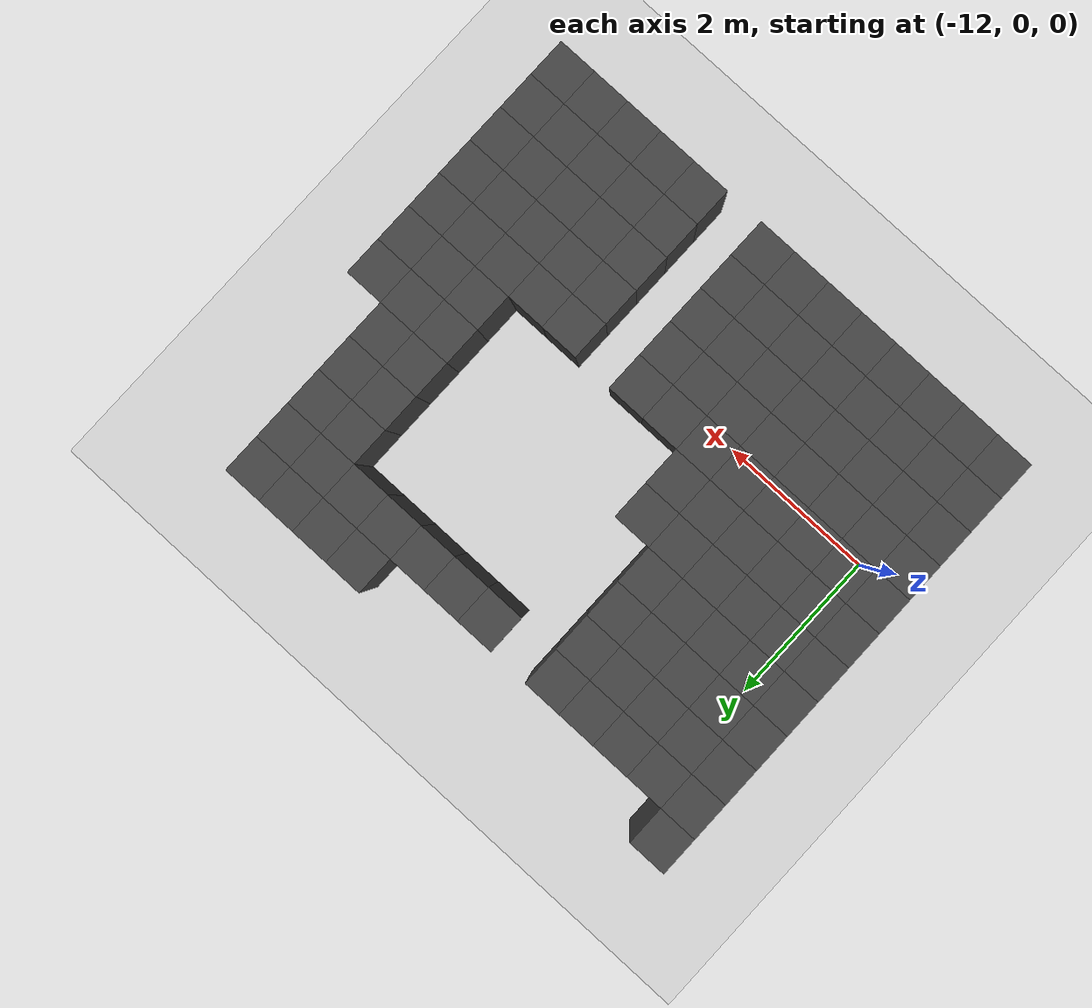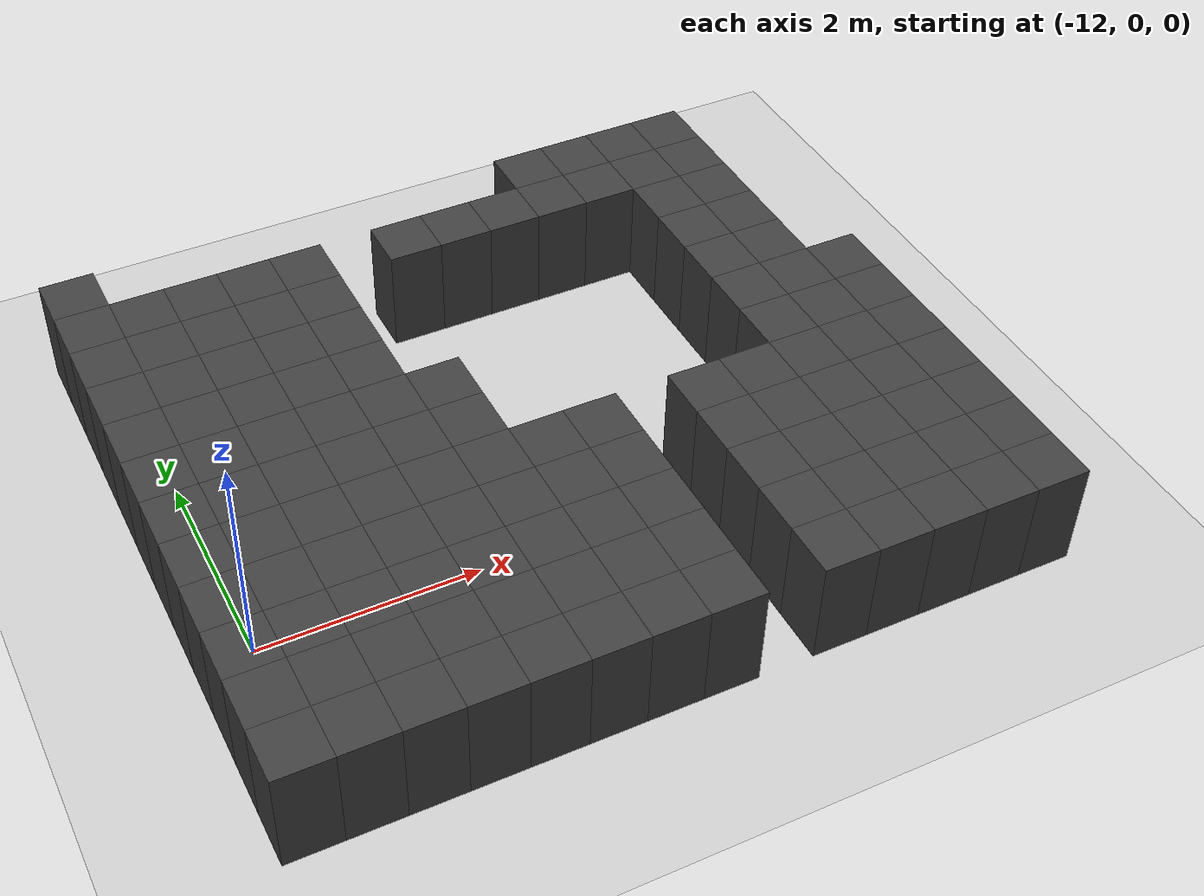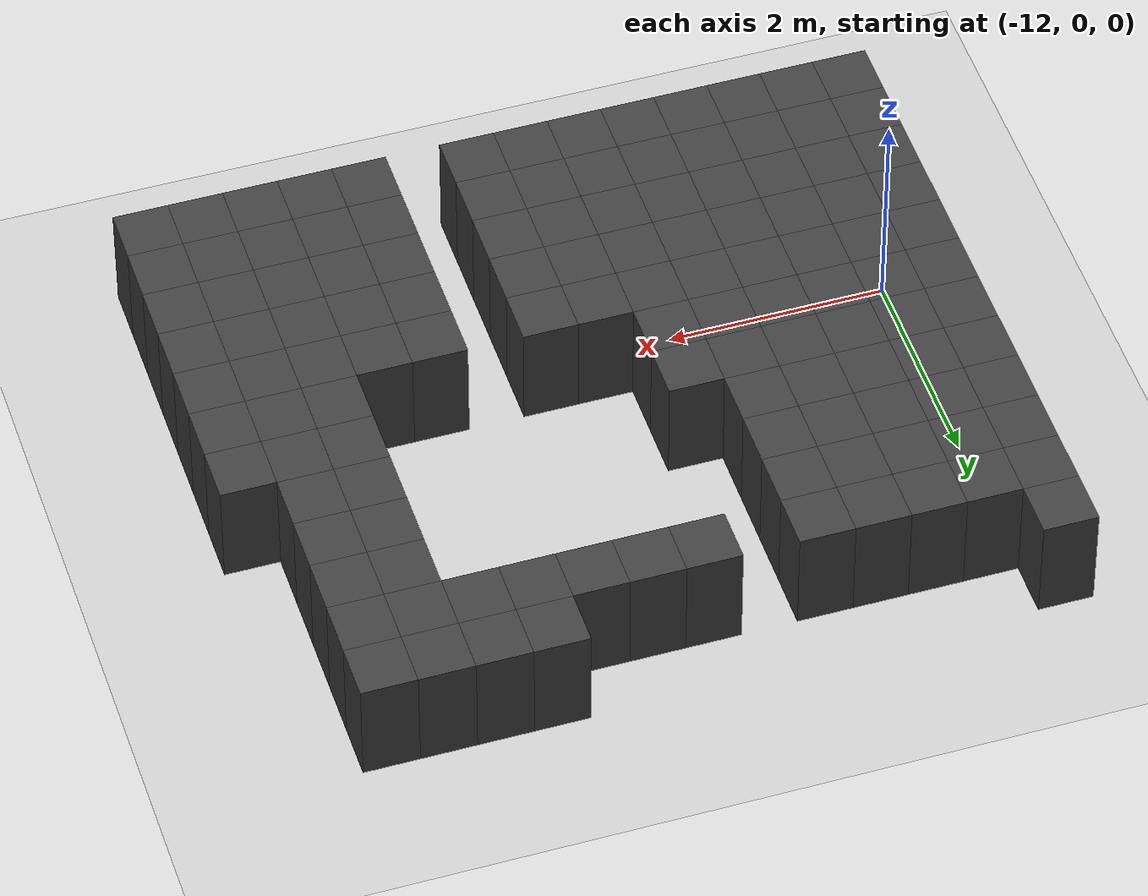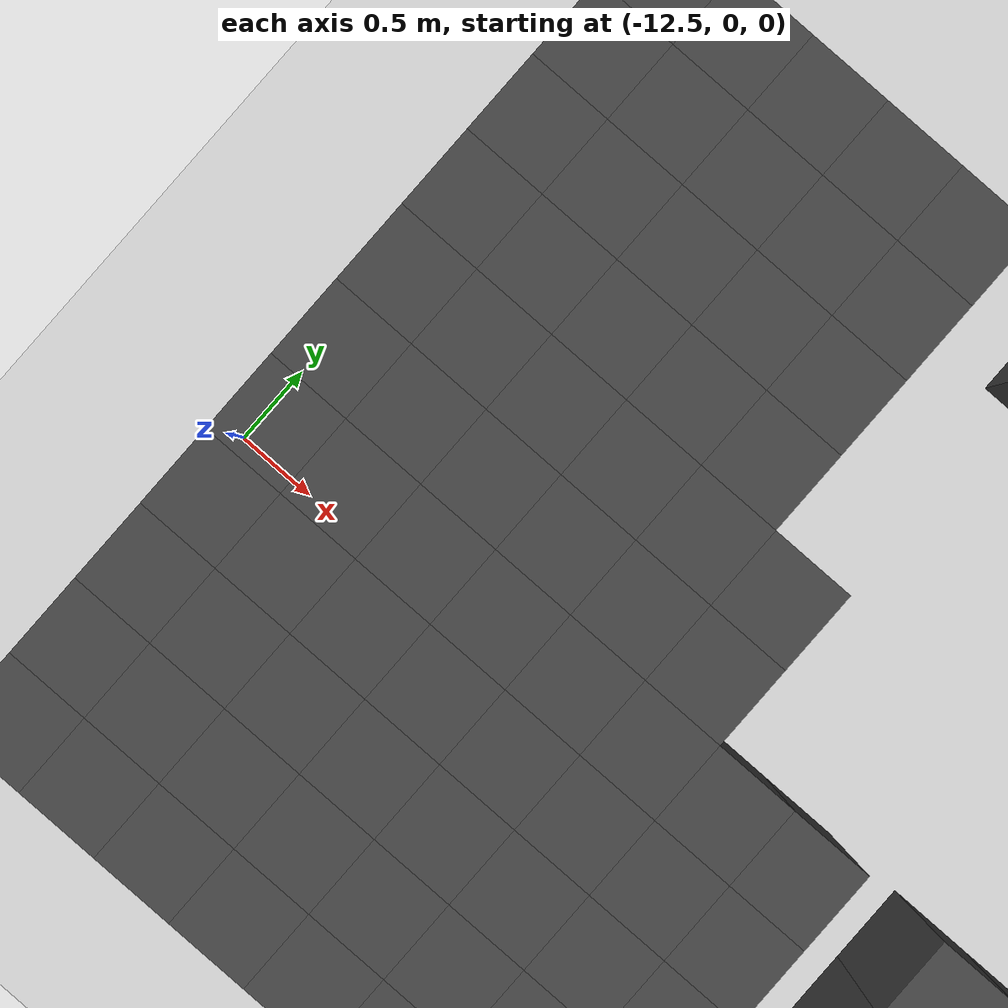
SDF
<sdf version="1.7">
 <world name="map_14547">
  <model name="ground_plane">
   <static>true</static>
   <link name="link">
    <collision name="collision">
     <geometry><plane><normal>0 0 1</normal><size>200 200</size></plane></geometry>
    </collision>
    <visual name="visual">
     <geometry><plane><normal>0 0 1</normal><size>200 200</size></plane></geometry>
     <material><ambient>0.8 0.8 0.8 1</ambient><diffuse>0.8 0.8 0.8 1</diffuse></material>
    </visual>
   </link>
  </model>
  <model name="maze_environment">
   <static>true</static>
   <link name="wall_530">
    <pose>-12.250 3.750 0.500 0 0 0</pose>
    <collision name="col"><geometry><box><size>0.5 0.5 1.0</size></box></geometry></collision>
    <visual name="vis">
     <geometry><box><size>0.5 0.5 1.0</size></box></geometry>
     <material><ambient>0.15 0.15 0.15 1</ambient><diffuse>0.25 0.25 0.25 1</diffuse></material>
    </visual>
   </link>
   <link name="wall_531">
    <pose>-7.750 3.750 0.500 0 0 0</pose>
    <collision name="col"><geometry><box><size>0.5 0.5 1.0</size></box></geometry></collision>
    <visual name="vis">
     <geometry><box><size>0.5 0.5 1.0</size></box></geometry>
     <material><ambient>0.15 0.15 0.15 1</ambient><diffuse>0.25 0.25 0.25 1</diffuse></material>
    </visual>
   </link>
   <link name="wall_532">
    <pose>-7.250 3.750 0.500 0 0 0</pose>
    <collision name="col"><geometry><box><size>0.5 0.5 1.0</size></box></geometry></collision>
    <visual name="vis">
     <geometry><box><size>0.5 0.5 1.0</size></box></geometry>
     <material><ambient>0.15 0.15 0.15 1</ambient><diffuse>0.25 0.25 0.25 1</diffuse></material>
    </visual>
   </link>
   <link name="wall_533">
    <pose>-6.750 3.750 0.500 0 0 0</pose>
    <collision name="col"><geometry><box><size>0.5 0.5 1.0</size></box></geometry></collision>
    <visual name="vis">
     <geometry><box><size>0.5 0.5 1.0</size></box></geometry>
     <material><ambient>0.15 0.15 0.15 1</ambient><diffuse>0.25 0.25 0.25 1</diffuse></material>
    </visual>
   </link>
   <link name="wall_534">
    <pose>-6.250 3.750 0.500 0 0 0</pose>
    <collision name="col"><geometry><box><size>0.5 0.5 1.0</size></box></geometry></collision>
    <visual name="vis">
     <geometry><box><size>0.5 0.5 1.0</size></box></geometry>
     <material><ambient>0.15 0.15 0.15 1</ambient><diffuse>0.25 0.25 0.25 1</diffuse></material>
    </visual>
   </link>
   <link name="wall_572">
    <pose>-12.250 3.250 0.500 0 0 0</pose>
    <collision name="col"><geometry><box><size>0.5 0.5 1.0</size></box></geometry></collision>
    <visual name="vis">
     <geometry><box><size>0.5 0.5 1.0</size></box></geometry>
     <material><ambient>0.15 0.15 0.15 1</ambient><diffuse>0.25 0.25 0.25 1</diffuse></material>
    </visual>
   </link>
   <link name="wall_573">
    <pose>-11.750 3.250 0.500 0 0 0</pose>
    <collision name="col"><geometry><box><size>0.5 0.5 1.0</size></box></geometry></collision>
    <visual name="vis">
     <geometry><box><size>0.5 0.5 1.0</size></box></geometry>
     <material><ambient>0.15 0.15 0.15 1</ambient><diffuse>0.25 0.25 0.25 1</diffuse></material>
    </visual>
   </link>
   <link name="wall_574">
    <pose>-11.250 3.250 0.500 0 0 0</pose>
    <collision name="col"><geometry><box><size>0.5 0.5 1.0</size></box></geometry></collision>
    <visual name="vis">
     <geometry><box><size>0.5 0.5 1.0</size></box></geometry>
     <material><ambient>0.15 0.15 0.15 1</ambient><diffuse>0.25 0.25 0.25 1</diffuse></material>
    </visual>
   </link>
   <link name="wall_575">
    <pose>-10.750 3.250 0.500 0 0 0</pose>
    <collision name="col"><geometry><box><size>0.5 0.5 1.0</size></box></geometry></collision>
    <visual name="vis">
     <geometry><box><size>0.5 0.5 1.0</size></box></geometry>
     <material><ambient>0.15 0.15 0.15 1</ambient><diffuse>0.25 0.25 0.25 1</diffuse></material>
    </visual>
   </link>
   <link name="wall_576">
    <pose>-10.250 3.250 0.500 0 0 0</pose>
    <collision name="col"><geometry><box><size>0.5 0.5 1.0</size></box></geometry></collision>
    <visual name="vis">
     <geometry><box><size>0.5 0.5 1.0</size></box></geometry>
     <material><ambient>0.15 0.15 0.15 1</ambient><diffuse>0.25 0.25 0.25 1</diffuse></material>
    </visual>
   </link>
   <link name="wall_577">
    <pose>-9.250 3.250 0.500 0 0 0</pose>
    <collision name="col"><geometry><box><size>0.5 0.5 1.0</size></box></geometry></collision>
    <visual name="vis">
     <geometry><box><size>0.5 0.5 1.0</size></box></geometry>
     <material><ambient>0.15 0.15 0.15 1</ambient><diffuse>0.25 0.25 0.25 1</diffuse></material>
    </visual>
   </link>
   <link name="wall_578">
    <pose>-8.750 3.250 0.500 0 0 0</pose>
    <collision name="col"><geometry><box><size>0.5 0.5 1.0</size></box></geometry></collision>
    <visual name="vis">
     <geometry><box><size>0.5 0.5 1.0</size></box></geometry>
     <material><ambient>0.15 0.15 0.15 1</ambient><diffuse>0.25 0.25 0.25 1</diffuse></material>
    </visual>
   </link>
   <link name="wall_579">
    <pose>-8.250 3.250 0.500 0 0 0</pose>
    <collision name="col"><geometry><box><size>0.5 0.5 1.0</size></box></geometry></collision>
    <visual name="vis">
     <geometry><box><size>0.5 0.5 1.0</size></box></geometry>
     <material><ambient>0.15 0.15 0.15 1</ambient><diffuse>0.25 0.25 0.25 1</diffuse></material>
    </visual>
   </link>
   <link name="wall_580">
    <pose>-7.750 3.250 0.500 0 0 0</pose>
    <collision name="col"><geometry><box><size>0.5 0.5 1.0</size></box></geometry></collision>
    <visual name="vis">
     <geometry><box><size>0.5 0.5 1.0</size></box></geometry>
     <material><ambient>0.15 0.15 0.15 1</ambient><diffuse>0.25 0.25 0.25 1</diffuse></material>
    </visual>
   </link>
   <link name="wall_581">
    <pose>-7.250 3.250 0.500 0 0 0</pose>
    <collision name="col"><geometry><box><size>0.5 0.5 1.0</size></box></geometry></collision>
    <visual name="vis">
     <geometry><box><size>0.5 0.5 1.0</size></box></geometry>
     <material><ambient>0.15 0.15 0.15 1</ambient><diffuse>0.25 0.25 0.25 1</diffuse></material>
    </visual>
   </link>
   <link name="wall_582">
    <pose>-6.750 3.250 0.500 0 0 0</pose>
    <collision name="col"><geometry><box><size>0.5 0.5 1.0</size></box></geometry></collision>
    <visual name="vis">
     <geometry><box><size>0.5 0.5 1.0</size></box></geometry>
     <material><ambient>0.15 0.15 0.15 1</ambient><diffuse>0.25 0.25 0.25 1</diffuse></material>
    </visual>
   </link>
   <link name="wall_583">
    <pose>-6.250 3.250 0.500 0 0 0</pose>
    <collision name="col"><geometry><box><size>0.5 0.5 1.0</size></box></geometry></collision>
    <visual name="vis">
     <geometry><box><size>0.5 0.5 1.0</size></box></geometry>
     <material><ambient>0.15 0.15 0.15 1</ambient><diffuse>0.25 0.25 0.25 1</diffuse></material>
    </visual>
   </link>
   <link name="wall_621">
    <pose>-12.250 2.750 0.500 0 0 0</pose>
    <collision name="col"><geometry><box><size>0.5 0.5 1.0</size></box></geometry></collision>
    <visual name="vis">
     <geometry><box><size>0.5 0.5 1.0</size></box></geometry>
     <material><ambient>0.15 0.15 0.15 1</ambient><diffuse>0.25 0.25 0.25 1</diffuse></material>
    </visual>
   </link>
   <link name="wall_622">
    <pose>-11.750 2.750 0.500 0 0 0</pose>
    <collision name="col"><geometry><box><size>0.5 0.5 1.0</size></box></geometry></collision>
    <visual name="vis">
     <geometry><box><size>0.5 0.5 1.0</size></box></geometry>
     <material><ambient>0.15 0.15 0.15 1</ambient><diffuse>0.25 0.25 0.25 1</diffuse></material>
    </visual>
   </link>
   <link name="wall_623">
    <pose>-11.250 2.750 0.500 0 0 0</pose>
    <collision name="col"><geometry><box><size>0.5 0.5 1.0</size></box></geometry></collision>
    <visual name="vis">
     <geometry><box><size>0.5 0.5 1.0</size></box></geometry>
     <material><ambient>0.15 0.15 0.15 1</ambient><diffuse>0.25 0.25 0.25 1</diffuse></material>
    </visual>
   </link>
   <link name="wall_624">
    <pose>-10.750 2.750 0.500 0 0 0</pose>
    <collision name="col"><geometry><box><size>0.5 0.5 1.0</size></box></geometry></collision>
    <visual name="vis">
     <geometry><box><size>0.5 0.5 1.0</size></box></geometry>
     <material><ambient>0.15 0.15 0.15 1</ambient><diffuse>0.25 0.25 0.25 1</diffuse></material>
    </visual>
   </link>
   <link name="wall_625">
    <pose>-10.250 2.750 0.500 0 0 0</pose>
    <collision name="col"><geometry><box><size>0.5 0.5 1.0</size></box></geometry></collision>
    <visual name="vis">
     <geometry><box><size>0.5 0.5 1.0</size></box></geometry>
     <material><ambient>0.15 0.15 0.15 1</ambient><diffuse>0.25 0.25 0.25 1</diffuse></material>
    </visual>
   </link>
   <link name="wall_626">
    <pose>-6.750 2.750 0.500 0 0 0</pose>
    <collision name="col"><geometry><box><size>0.5 0.5 1.0</size></box></geometry></collision>
    <visual name="vis">
     <geometry><box><size>0.5 0.5 1.0</size></box></geometry>
     <material><ambient>0.15 0.15 0.15 1</ambient><diffuse>0.25 0.25 0.25 1</diffuse></material>
    </visual>
   </link>
   <link name="wall_627">
    <pose>-6.250 2.750 0.500 0 0 0</pose>
    <collision name="col"><geometry><box><size>0.5 0.5 1.0</size></box></geometry></collision>
    <visual name="vis">
     <geometry><box><size>0.5 0.5 1.0</size></box></geometry>
     <material><ambient>0.15 0.15 0.15 1</ambient><diffuse>0.25 0.25 0.25 1</diffuse></material>
    </visual>
   </link>
   <link name="wall_665">
    <pose>-12.250 2.250 0.500 0 0 0</pose>
    <collision name="col"><geometry><box><size>0.5 0.5 1.0</size></box></geometry></collision>
    <visual name="vis">
     <geometry><box><size>0.5 0.5 1.0</size></box></geometry>
     <material><ambient>0.15 0.15 0.15 1</ambient><diffuse>0.25 0.25 0.25 1</diffuse></material>
    </visual>
   </link>
   <link name="wall_666">
    <pose>-11.750 2.250 0.500 0 0 0</pose>
    <collision name="col"><geometry><box><size>0.5 0.5 1.0</size></box></geometry></collision>
    <visual name="vis">
     <geometry><box><size>0.5 0.5 1.0</size></box></geometry>
     <material><ambient>0.15 0.15 0.15 1</ambient><diffuse>0.25 0.25 0.25 1</diffuse></material>
    </visual>
   </link>
   <link name="wall_667">
    <pose>-11.250 2.250 0.500 0 0 0</pose>
    <collision name="col"><geometry><box><size>0.5 0.5 1.0</size></box></geometry></collision>
    <visual name="vis">
     <geometry><box><size>0.5 0.5 1.0</size></box></geometry>
     <material><ambient>0.15 0.15 0.15 1</ambient><diffuse>0.25 0.25 0.25 1</diffuse></material>
    </visual>
   </link>
   <link name="wall_668">
    <pose>-10.750 2.250 0.500 0 0 0</pose>
    <collision name="col"><geometry><box><size>0.5 0.5 1.0</size></box></geometry></collision>
    <visual name="vis">
     <geometry><box><size>0.5 0.5 1.0</size></box></geometry>
     <material><ambient>0.15 0.15 0.15 1</ambient><diffuse>0.25 0.25 0.25 1</diffuse></material>
    </visual>
   </link>
   <link name="wall_669">
    <pose>-10.250 2.250 0.500 0 0 0</pose>
    <collision name="col"><geometry><box><size>0.5 0.5 1.0</size></box></geometry></collision>
    <visual name="vis">
     <geometry><box><size>0.5 0.5 1.0</size></box></geometry>
     <material><ambient>0.15 0.15 0.15 1</ambient><diffuse>0.25 0.25 0.25 1</diffuse></material>
    </visual>
   </link>
   <link name="wall_670">
    <pose>-6.750 2.250 0.500 0 0 0</pose>
    <collision name="col"><geometry><box><size>0.5 0.5 1.0</size></box></geometry></collision>
    <visual name="vis">
     <geometry><box><size>0.5 0.5 1.0</size></box></geometry>
     <material><ambient>0.15 0.15 0.15 1</ambient><diffuse>0.25 0.25 0.25 1</diffuse></material>
    </visual>
   </link>
   <link name="wall_671">
    <pose>-6.250 2.250 0.500 0 0 0</pose>
    <collision name="col"><geometry><box><size>0.5 0.5 1.0</size></box></geometry></collision>
    <visual name="vis">
     <geometry><box><size>0.5 0.5 1.0</size></box></geometry>
     <material><ambient>0.15 0.15 0.15 1</ambient><diffuse>0.25 0.25 0.25 1</diffuse></material>
    </visual>
   </link>
   <link name="wall_709">
    <pose>-12.250 1.750 0.500 0 0 0</pose>
    <collision name="col"><geometry><box><size>0.5 0.5 1.0</size></box></geometry></collision>
    <visual name="vis">
     <geometry><box><size>0.5 0.5 1.0</size></box></geometry>
     <material><ambient>0.15 0.15 0.15 1</ambient><diffuse>0.25 0.25 0.25 1</diffuse></material>
    </visual>
   </link>
   <link name="wall_710">
    <pose>-11.750 1.750 0.500 0 0 0</pose>
    <collision name="col"><geometry><box><size>0.5 0.5 1.0</size></box></geometry></collision>
    <visual name="vis">
     <geometry><box><size>0.5 0.5 1.0</size></box></geometry>
     <material><ambient>0.15 0.15 0.15 1</ambient><diffuse>0.25 0.25 0.25 1</diffuse></material>
    </visual>
   </link>
   <link name="wall_711">
    <pose>-11.250 1.750 0.500 0 0 0</pose>
    <collision name="col"><geometry><box><size>0.5 0.5 1.0</size></box></geometry></collision>
    <visual name="vis">
     <geometry><box><size>0.5 0.5 1.0</size></box></geometry>
     <material><ambient>0.15 0.15 0.15 1</ambient><diffuse>0.25 0.25 0.25 1</diffuse></material>
    </visual>
   </link>
   <link name="wall_712">
    <pose>-10.750 1.750 0.500 0 0 0</pose>
    <collision name="col"><geometry><box><size>0.5 0.5 1.0</size></box></geometry></collision>
    <visual name="vis">
     <geometry><box><size>0.5 0.5 1.0</size></box></geometry>
     <material><ambient>0.15 0.15 0.15 1</ambient><diffuse>0.25 0.25 0.25 1</diffuse></material>
    </visual>
   </link>
   <link name="wall_713">
    <pose>-10.250 1.750 0.500 0 0 0</pose>
    <collision name="col"><geometry><box><size>0.5 0.5 1.0</size></box></geometry></collision>
    <visual name="vis">
     <geometry><box><size>0.5 0.5 1.0</size></box></geometry>
     <material><ambient>0.15 0.15 0.15 1</ambient><diffuse>0.25 0.25 0.25 1</diffuse></material>
    </visual>
   </link>
   <link name="wall_714">
    <pose>-6.750 1.750 0.500 0 0 0</pose>
    <collision name="col"><geometry><box><size>0.5 0.5 1.0</size></box></geometry></collision>
    <visual name="vis">
     <geometry><box><size>0.5 0.5 1.0</size></box></geometry>
     <material><ambient>0.15 0.15 0.15 1</ambient><diffuse>0.25 0.25 0.25 1</diffuse></material>
    </visual>
   </link>
   <link name="wall_715">
    <pose>-6.250 1.750 0.500 0 0 0</pose>
    <collision name="col"><geometry><box><size>0.5 0.5 1.0</size></box></geometry></collision>
    <visual name="vis">
     <geometry><box><size>0.5 0.5 1.0</size></box></geometry>
     <material><ambient>0.15 0.15 0.15 1</ambient><diffuse>0.25 0.25 0.25 1</diffuse></material>
    </visual>
   </link>
   <link name="wall_753">
    <pose>-12.250 1.250 0.500 0 0 0</pose>
    <collision name="col"><geometry><box><size>0.5 0.5 1.0</size></box></geometry></collision>
    <visual name="vis">
     <geometry><box><size>0.5 0.5 1.0</size></box></geometry>
     <material><ambient>0.15 0.15 0.15 1</ambient><diffuse>0.25 0.25 0.25 1</diffuse></material>
    </visual>
   </link>
   <link name="wall_754">
    <pose>-11.750 1.250 0.500 0 0 0</pose>
    <collision name="col"><geometry><box><size>0.5 0.5 1.0</size></box></geometry></collision>
    <visual name="vis">
     <geometry><box><size>0.5 0.5 1.0</size></box></geometry>
     <material><ambient>0.15 0.15 0.15 1</ambient><diffuse>0.25 0.25 0.25 1</diffuse></material>
    </visual>
   </link>
   <link name="wall_755">
    <pose>-11.250 1.250 0.500 0 0 0</pose>
    <collision name="col"><geometry><box><size>0.5 0.5 1.0</size></box></geometry></collision>
    <visual name="vis">
     <geometry><box><size>0.5 0.5 1.0</size></box></geometry>
     <material><ambient>0.15 0.15 0.15 1</ambient><diffuse>0.25 0.25 0.25 1</diffuse></material>
    </visual>
   </link>
   <link name="wall_756">
    <pose>-10.750 1.250 0.500 0 0 0</pose>
    <collision name="col"><geometry><box><size>0.5 0.5 1.0</size></box></geometry></collision>
    <visual name="vis">
     <geometry><box><size>0.5 0.5 1.0</size></box></geometry>
     <material><ambient>0.15 0.15 0.15 1</ambient><diffuse>0.25 0.25 0.25 1</diffuse></material>
    </visual>
   </link>
   <link name="wall_757">
    <pose>-10.250 1.250 0.500 0 0 0</pose>
    <collision name="col"><geometry><box><size>0.5 0.5 1.0</size></box></geometry></collision>
    <visual name="vis">
     <geometry><box><size>0.5 0.5 1.0</size></box></geometry>
     <material><ambient>0.15 0.15 0.15 1</ambient><diffuse>0.25 0.25 0.25 1</diffuse></material>
    </visual>
   </link>
   <link name="wall_758">
    <pose>-9.750 1.250 0.500 0 0 0</pose>
    <collision name="col"><geometry><box><size>0.5 0.5 1.0</size></box></geometry></collision>
    <visual name="vis">
     <geometry><box><size>0.5 0.5 1.0</size></box></geometry>
     <material><ambient>0.15 0.15 0.15 1</ambient><diffuse>0.25 0.25 0.25 1</diffuse></material>
    </visual>
   </link>
   <link name="wall_759">
    <pose>-6.750 1.250 0.500 0 0 0</pose>
    <collision name="col"><geometry><box><size>0.5 0.5 1.0</size></box></geometry></collision>
    <visual name="vis">
     <geometry><box><size>0.5 0.5 1.0</size></box></geometry>
     <material><ambient>0.15 0.15 0.15 1</ambient><diffuse>0.25 0.25 0.25 1</diffuse></material>
    </visual>
   </link>
   <link name="wall_760">
    <pose>-6.250 1.250 0.500 0 0 0</pose>
    <collision name="col"><geometry><box><size>0.5 0.5 1.0</size></box></geometry></collision>
    <visual name="vis">
     <geometry><box><size>0.5 0.5 1.0</size></box></geometry>
     <material><ambient>0.15 0.15 0.15 1</ambient><diffuse>0.25 0.25 0.25 1</diffuse></material>
    </visual>
   </link>
   <link name="wall_761">
    <pose>-5.750 1.250 0.500 0 0 0</pose>
    <collision name="col"><geometry><box><size>0.5 0.5 1.0</size></box></geometry></collision>
    <visual name="vis">
     <geometry><box><size>0.5 0.5 1.0</size></box></geometry>
     <material><ambient>0.15 0.15 0.15 1</ambient><diffuse>0.25 0.25 0.25 1</diffuse></material>
    </visual>
   </link>
   <link name="wall_798">
    <pose>-12.250 0.750 0.500 0 0 0</pose>
    <collision name="col"><geometry><box><size>0.5 0.5 1.0</size></box></geometry></collision>
    <visual name="vis">
     <geometry><box><size>0.5 0.5 1.0</size></box></geometry>
     <material><ambient>0.15 0.15 0.15 1</ambient><diffuse>0.25 0.25 0.25 1</diffuse></material>
    </visual>
   </link>
   <link name="wall_799">
    <pose>-11.750 0.750 0.500 0 0 0</pose>
    <collision name="col"><geometry><box><size>0.5 0.5 1.0</size></box></geometry></collision>
    <visual name="vis">
     <geometry><box><size>0.5 0.5 1.0</size></box></geometry>
     <material><ambient>0.15 0.15 0.15 1</ambient><diffuse>0.25 0.25 0.25 1</diffuse></material>
    </visual>
   </link>
   <link name="wall_800">
    <pose>-11.250 0.750 0.500 0 0 0</pose>
    <collision name="col"><geometry><box><size>0.5 0.5 1.0</size></box></geometry></collision>
    <visual name="vis">
     <geometry><box><size>0.5 0.5 1.0</size></box></geometry>
     <material><ambient>0.15 0.15 0.15 1</ambient><diffuse>0.25 0.25 0.25 1</diffuse></material>
    </visual>
   </link>
   <link name="wall_801">
    <pose>-10.750 0.750 0.500 0 0 0</pose>
    <collision name="col"><geometry><box><size>0.5 0.5 1.0</size></box></geometry></collision>
    <visual name="vis">
     <geometry><box><size>0.5 0.5 1.0</size></box></geometry>
     <material><ambient>0.15 0.15 0.15 1</ambient><diffuse>0.25 0.25 0.25 1</diffuse></material>
    </visual>
   </link>
   <link name="wall_802">
    <pose>-10.250 0.750 0.500 0 0 0</pose>
    <collision name="col"><geometry><box><size>0.5 0.5 1.0</size></box></geometry></collision>
    <visual name="vis">
     <geometry><box><size>0.5 0.5 1.0</size></box></geometry>
     <material><ambient>0.15 0.15 0.15 1</ambient><diffuse>0.25 0.25 0.25 1</diffuse></material>
    </visual>
   </link>
   <link name="wall_803">
    <pose>-9.750 0.750 0.500 0 0 0</pose>
    <collision name="col"><geometry><box><size>0.5 0.5 1.0</size></box></geometry></collision>
    <visual name="vis">
     <geometry><box><size>0.5 0.5 1.0</size></box></geometry>
     <material><ambient>0.15 0.15 0.15 1</ambient><diffuse>0.25 0.25 0.25 1</diffuse></material>
    </visual>
   </link>
   <link name="wall_804">
    <pose>-6.750 0.750 0.500 0 0 0</pose>
    <collision name="col"><geometry><box><size>0.5 0.5 1.0</size></box></geometry></collision>
    <visual name="vis">
     <geometry><box><size>0.5 0.5 1.0</size></box></geometry>
     <material><ambient>0.15 0.15 0.15 1</ambient><diffuse>0.25 0.25 0.25 1</diffuse></material>
    </visual>
   </link>
   <link name="wall_805">
    <pose>-6.250 0.750 0.500 0 0 0</pose>
    <collision name="col"><geometry><box><size>0.5 0.5 1.0</size></box></geometry></collision>
    <visual name="vis">
     <geometry><box><size>0.5 0.5 1.0</size></box></geometry>
     <material><ambient>0.15 0.15 0.15 1</ambient><diffuse>0.25 0.25 0.25 1</diffuse></material>
    </visual>
   </link>
   <link name="wall_806">
    <pose>-5.750 0.750 0.500 0 0 0</pose>
    <collision name="col"><geometry><box><size>0.5 0.5 1.0</size></box></geometry></collision>
    <visual name="vis">
     <geometry><box><size>0.5 0.5 1.0</size></box></geometry>
     <material><ambient>0.15 0.15 0.15 1</ambient><diffuse>0.25 0.25 0.25 1</diffuse></material>
    </visual>
   </link>
   <link name="wall_843">
    <pose>-12.250 0.250 0.500 0 0 0</pose>
    <collision name="col"><geometry><box><size>0.5 0.5 1.0</size></box></geometry></collision>
    <visual name="vis">
     <geometry><box><size>0.5 0.5 1.0</size></box></geometry>
     <material><ambient>0.15 0.15 0.15 1</ambient><diffuse>0.25 0.25 0.25 1</diffuse></material>
    </visual>
   </link>
   <link name="wall_844">
    <pose>-11.750 0.250 0.500 0 0 0</pose>
    <collision name="col"><geometry><box><size>0.5 0.5 1.0</size></box></geometry></collision>
    <visual name="vis">
     <geometry><box><size>0.5 0.5 1.0</size></box></geometry>
     <material><ambient>0.15 0.15 0.15 1</ambient><diffuse>0.25 0.25 0.25 1</diffuse></material>
    </visual>
   </link>
   <link name="wall_845">
    <pose>-11.250 0.250 0.500 0 0 0</pose>
    <collision name="col"><geometry><box><size>0.5 0.5 1.0</size></box></geometry></collision>
    <visual name="vis">
     <geometry><box><size>0.5 0.5 1.0</size></box></geometry>
     <material><ambient>0.15 0.15 0.15 1</ambient><diffuse>0.25 0.25 0.25 1</diffuse></material>
    </visual>
   </link>
   <link name="wall_846">
    <pose>-10.750 0.250 0.500 0 0 0</pose>
    <collision name="col"><geometry><box><size>0.5 0.5 1.0</size></box></geometry></collision>
    <visual name="vis">
     <geometry><box><size>0.5 0.5 1.0</size></box></geometry>
     <material><ambient>0.15 0.15 0.15 1</ambient><diffuse>0.25 0.25 0.25 1</diffuse></material>
    </visual>
   </link>
   <link name="wall_847">
    <pose>-10.250 0.250 0.500 0 0 0</pose>
    <collision name="col"><geometry><box><size>0.5 0.5 1.0</size></box></geometry></collision>
    <visual name="vis">
     <geometry><box><size>0.5 0.5 1.0</size></box></geometry>
     <material><ambient>0.15 0.15 0.15 1</ambient><diffuse>0.25 0.25 0.25 1</diffuse></material>
    </visual>
   </link>
   <link name="wall_848">
    <pose>-9.750 0.250 0.500 0 0 0</pose>
    <collision name="col"><geometry><box><size>0.5 0.5 1.0</size></box></geometry></collision>
    <visual name="vis">
     <geometry><box><size>0.5 0.5 1.0</size></box></geometry>
     <material><ambient>0.15 0.15 0.15 1</ambient><diffuse>0.25 0.25 0.25 1</diffuse></material>
    </visual>
   </link>
   <link name="wall_849">
    <pose>-9.250 0.250 0.500 0 0 0</pose>
    <collision name="col"><geometry><box><size>0.5 0.5 1.0</size></box></geometry></collision>
    <visual name="vis">
     <geometry><box><size>0.5 0.5 1.0</size></box></geometry>
     <material><ambient>0.15 0.15 0.15 1</ambient><diffuse>0.25 0.25 0.25 1</diffuse></material>
    </visual>
   </link>
   <link name="wall_850">
    <pose>-8.750 0.250 0.500 0 0 0</pose>
    <collision name="col"><geometry><box><size>0.5 0.5 1.0</size></box></geometry></collision>
    <visual name="vis">
     <geometry><box><size>0.5 0.5 1.0</size></box></geometry>
     <material><ambient>0.15 0.15 0.15 1</ambient><diffuse>0.25 0.25 0.25 1</diffuse></material>
    </visual>
   </link>
   <link name="wall_851">
    <pose>-7.750 0.250 0.500 0 0 0</pose>
    <collision name="col"><geometry><box><size>0.5 0.5 1.0</size></box></geometry></collision>
    <visual name="vis">
     <geometry><box><size>0.5 0.5 1.0</size></box></geometry>
     <material><ambient>0.15 0.15 0.15 1</ambient><diffuse>0.25 0.25 0.25 1</diffuse></material>
    </visual>
   </link>
   <link name="wall_852">
    <pose>-7.250 0.250 0.500 0 0 0</pose>
    <collision name="col"><geometry><box><size>0.5 0.5 1.0</size></box></geometry></collision>
    <visual name="vis">
     <geometry><box><size>0.5 0.5 1.0</size></box></geometry>
     <material><ambient>0.15 0.15 0.15 1</ambient><diffuse>0.25 0.25 0.25 1</diffuse></material>
    </visual>
   </link>
   <link name="wall_853">
    <pose>-6.750 0.250 0.500 0 0 0</pose>
    <collision name="col"><geometry><box><size>0.5 0.5 1.0</size></box></geometry></collision>
    <visual name="vis">
     <geometry><box><size>0.5 0.5 1.0</size></box></geometry>
     <material><ambient>0.15 0.15 0.15 1</ambient><diffuse>0.25 0.25 0.25 1</diffuse></material>
    </visual>
   </link>
   <link name="wall_854">
    <pose>-6.250 0.250 0.500 0 0 0</pose>
    <collision name="col"><geometry><box><size>0.5 0.5 1.0</size></box></geometry></collision>
    <visual name="vis">
     <geometry><box><size>0.5 0.5 1.0</size></box></geometry>
     <material><ambient>0.15 0.15 0.15 1</ambient><diffuse>0.25 0.25 0.25 1</diffuse></material>
    </visual>
   </link>
   <link name="wall_855">
    <pose>-5.750 0.250 0.500 0 0 0</pose>
    <collision name="col"><geometry><box><size>0.5 0.5 1.0</size></box></geometry></collision>
    <visual name="vis">
     <geometry><box><size>0.5 0.5 1.0</size></box></geometry>
     <material><ambient>0.15 0.15 0.15 1</ambient><diffuse>0.25 0.25 0.25 1</diffuse></material>
    </visual>
   </link>
   <link name="wall_884">
    <pose>-12.250 -0.250 0.500 0 0 0</pose>
    <collision name="col"><geometry><box><size>0.5 0.5 1.0</size></box></geometry></collision>
    <visual name="vis">
     <geometry><box><size>0.5 0.5 1.0</size></box></geometry>
     <material><ambient>0.15 0.15 0.15 1</ambient><diffuse>0.25 0.25 0.25 1</diffuse></material>
    </visual>
   </link>
   <link name="wall_885">
    <pose>-11.750 -0.250 0.500 0 0 0</pose>
    <collision name="col"><geometry><box><size>0.5 0.5 1.0</size></box></geometry></collision>
    <visual name="vis">
     <geometry><box><size>0.5 0.5 1.0</size></box></geometry>
     <material><ambient>0.15 0.15 0.15 1</ambient><diffuse>0.25 0.25 0.25 1</diffuse></material>
    </visual>
   </link>
   <link name="wall_886">
    <pose>-11.250 -0.250 0.500 0 0 0</pose>
    <collision name="col"><geometry><box><size>0.5 0.5 1.0</size></box></geometry></collision>
    <visual name="vis">
     <geometry><box><size>0.5 0.5 1.0</size></box></geometry>
     <material><ambient>0.15 0.15 0.15 1</ambient><diffuse>0.25 0.25 0.25 1</diffuse></material>
    </visual>
   </link>
   <link name="wall_887">
    <pose>-10.750 -0.250 0.500 0 0 0</pose>
    <collision name="col"><geometry><box><size>0.5 0.5 1.0</size></box></geometry></collision>
    <visual name="vis">
     <geometry><box><size>0.5 0.5 1.0</size></box></geometry>
     <material><ambient>0.15 0.15 0.15 1</ambient><diffuse>0.25 0.25 0.25 1</diffuse></material>
    </visual>
   </link>
   <link name="wall_888">
    <pose>-10.250 -0.250 0.500 0 0 0</pose>
    <collision name="col"><geometry><box><size>0.5 0.5 1.0</size></box></geometry></collision>
    <visual name="vis">
     <geometry><box><size>0.5 0.5 1.0</size></box></geometry>
     <material><ambient>0.15 0.15 0.15 1</ambient><diffuse>0.25 0.25 0.25 1</diffuse></material>
    </visual>
   </link>
   <link name="wall_889">
    <pose>-9.750 -0.250 0.500 0 0 0</pose>
    <collision name="col"><geometry><box><size>0.5 0.5 1.0</size></box></geometry></collision>
    <visual name="vis">
     <geometry><box><size>0.5 0.5 1.0</size></box></geometry>
     <material><ambient>0.15 0.15 0.15 1</ambient><diffuse>0.25 0.25 0.25 1</diffuse></material>
    </visual>
   </link>
   <link name="wall_890">
    <pose>-9.250 -0.250 0.500 0 0 0</pose>
    <collision name="col"><geometry><box><size>0.5 0.5 1.0</size></box></geometry></collision>
    <visual name="vis">
     <geometry><box><size>0.5 0.5 1.0</size></box></geometry>
     <material><ambient>0.15 0.15 0.15 1</ambient><diffuse>0.25 0.25 0.25 1</diffuse></material>
    </visual>
   </link>
   <link name="wall_891">
    <pose>-8.750 -0.250 0.500 0 0 0</pose>
    <collision name="col"><geometry><box><size>0.5 0.5 1.0</size></box></geometry></collision>
    <visual name="vis">
     <geometry><box><size>0.5 0.5 1.0</size></box></geometry>
     <material><ambient>0.15 0.15 0.15 1</ambient><diffuse>0.25 0.25 0.25 1</diffuse></material>
    </visual>
   </link>
   <link name="wall_892">
    <pose>-7.750 -0.250 0.500 0 0 0</pose>
    <collision name="col"><geometry><box><size>0.5 0.5 1.0</size></box></geometry></collision>
    <visual name="vis">
     <geometry><box><size>0.5 0.5 1.0</size></box></geometry>
     <material><ambient>0.15 0.15 0.15 1</ambient><diffuse>0.25 0.25 0.25 1</diffuse></material>
    </visual>
   </link>
   <link name="wall_893">
    <pose>-7.250 -0.250 0.500 0 0 0</pose>
    <collision name="col"><geometry><box><size>0.5 0.5 1.0</size></box></geometry></collision>
    <visual name="vis">
     <geometry><box><size>0.5 0.5 1.0</size></box></geometry>
     <material><ambient>0.15 0.15 0.15 1</ambient><diffuse>0.25 0.25 0.25 1</diffuse></material>
    </visual>
   </link>
   <link name="wall_894">
    <pose>-6.750 -0.250 0.500 0 0 0</pose>
    <collision name="col"><geometry><box><size>0.5 0.5 1.0</size></box></geometry></collision>
    <visual name="vis">
     <geometry><box><size>0.5 0.5 1.0</size></box></geometry>
     <material><ambient>0.15 0.15 0.15 1</ambient><diffuse>0.25 0.25 0.25 1</diffuse></material>
    </visual>
   </link>
   <link name="wall_895">
    <pose>-6.250 -0.250 0.500 0 0 0</pose>
    <collision name="col"><geometry><box><size>0.5 0.5 1.0</size></box></geometry></collision>
    <visual name="vis">
     <geometry><box><size>0.5 0.5 1.0</size></box></geometry>
     <material><ambient>0.15 0.15 0.15 1</ambient><diffuse>0.25 0.25 0.25 1</diffuse></material>
    </visual>
   </link>
   <link name="wall_896">
    <pose>-5.750 -0.250 0.500 0 0 0</pose>
    <collision name="col"><geometry><box><size>0.5 0.5 1.0</size></box></geometry></collision>
    <visual name="vis">
     <geometry><box><size>0.5 0.5 1.0</size></box></geometry>
     <material><ambient>0.15 0.15 0.15 1</ambient><diffuse>0.25 0.25 0.25 1</diffuse></material>
    </visual>
   </link>
   <link name="wall_925">
    <pose>-12.250 -0.750 0.500 0 0 0</pose>
    <collision name="col"><geometry><box><size>0.5 0.5 1.0</size></box></geometry></collision>
    <visual name="vis">
     <geometry><box><size>0.5 0.5 1.0</size></box></geometry>
     <material><ambient>0.15 0.15 0.15 1</ambient><diffuse>0.25 0.25 0.25 1</diffuse></material>
    </visual>
   </link>
   <link name="wall_926">
    <pose>-11.750 -0.750 0.500 0 0 0</pose>
    <collision name="col"><geometry><box><size>0.5 0.5 1.0</size></box></geometry></collision>
    <visual name="vis">
     <geometry><box><size>0.5 0.5 1.0</size></box></geometry>
     <material><ambient>0.15 0.15 0.15 1</ambient><diffuse>0.25 0.25 0.25 1</diffuse></material>
    </visual>
   </link>
   <link name="wall_927">
    <pose>-11.250 -0.750 0.500 0 0 0</pose>
    <collision name="col"><geometry><box><size>0.5 0.5 1.0</size></box></geometry></collision>
    <visual name="vis">
     <geometry><box><size>0.5 0.5 1.0</size></box></geometry>
     <material><ambient>0.15 0.15 0.15 1</ambient><diffuse>0.25 0.25 0.25 1</diffuse></material>
    </visual>
   </link>
   <link name="wall_928">
    <pose>-10.750 -0.750 0.500 0 0 0</pose>
    <collision name="col"><geometry><box><size>0.5 0.5 1.0</size></box></geometry></collision>
    <visual name="vis">
     <geometry><box><size>0.5 0.5 1.0</size></box></geometry>
     <material><ambient>0.15 0.15 0.15 1</ambient><diffuse>0.25 0.25 0.25 1</diffuse></material>
    </visual>
   </link>
   <link name="wall_929">
    <pose>-10.250 -0.750 0.500 0 0 0</pose>
    <collision name="col"><geometry><box><size>0.5 0.5 1.0</size></box></geometry></collision>
    <visual name="vis">
     <geometry><box><size>0.5 0.5 1.0</size></box></geometry>
     <material><ambient>0.15 0.15 0.15 1</ambient><diffuse>0.25 0.25 0.25 1</diffuse></material>
    </visual>
   </link>
   <link name="wall_930">
    <pose>-9.750 -0.750 0.500 0 0 0</pose>
    <collision name="col"><geometry><box><size>0.5 0.5 1.0</size></box></geometry></collision>
    <visual name="vis">
     <geometry><box><size>0.5 0.5 1.0</size></box></geometry>
     <material><ambient>0.15 0.15 0.15 1</ambient><diffuse>0.25 0.25 0.25 1</diffuse></material>
    </visual>
   </link>
   <link name="wall_931">
    <pose>-9.250 -0.750 0.500 0 0 0</pose>
    <collision name="col"><geometry><box><size>0.5 0.5 1.0</size></box></geometry></collision>
    <visual name="vis">
     <geometry><box><size>0.5 0.5 1.0</size></box></geometry>
     <material><ambient>0.15 0.15 0.15 1</ambient><diffuse>0.25 0.25 0.25 1</diffuse></material>
    </visual>
   </link>
   <link name="wall_932">
    <pose>-8.750 -0.750 0.500 0 0 0</pose>
    <collision name="col"><geometry><box><size>0.5 0.5 1.0</size></box></geometry></collision>
    <visual name="vis">
     <geometry><box><size>0.5 0.5 1.0</size></box></geometry>
     <material><ambient>0.15 0.15 0.15 1</ambient><diffuse>0.25 0.25 0.25 1</diffuse></material>
    </visual>
   </link>
   <link name="wall_933">
    <pose>-7.750 -0.750 0.500 0 0 0</pose>
    <collision name="col"><geometry><box><size>0.5 0.5 1.0</size></box></geometry></collision>
    <visual name="vis">
     <geometry><box><size>0.5 0.5 1.0</size></box></geometry>
     <material><ambient>0.15 0.15 0.15 1</ambient><diffuse>0.25 0.25 0.25 1</diffuse></material>
    </visual>
   </link>
   <link name="wall_934">
    <pose>-7.250 -0.750 0.500 0 0 0</pose>
    <collision name="col"><geometry><box><size>0.5 0.5 1.0</size></box></geometry></collision>
    <visual name="vis">
     <geometry><box><size>0.5 0.5 1.0</size></box></geometry>
     <material><ambient>0.15 0.15 0.15 1</ambient><diffuse>0.25 0.25 0.25 1</diffuse></material>
    </visual>
   </link>
   <link name="wall_935">
    <pose>-6.750 -0.750 0.500 0 0 0</pose>
    <collision name="col"><geometry><box><size>0.5 0.5 1.0</size></box></geometry></collision>
    <visual name="vis">
     <geometry><box><size>0.5 0.5 1.0</size></box></geometry>
     <material><ambient>0.15 0.15 0.15 1</ambient><diffuse>0.25 0.25 0.25 1</diffuse></material>
    </visual>
   </link>
   <link name="wall_936">
    <pose>-6.250 -0.750 0.500 0 0 0</pose>
    <collision name="col"><geometry><box><size>0.5 0.5 1.0</size></box></geometry></collision>
    <visual name="vis">
     <geometry><box><size>0.5 0.5 1.0</size></box></geometry>
     <material><ambient>0.15 0.15 0.15 1</ambient><diffuse>0.25 0.25 0.25 1</diffuse></material>
    </visual>
   </link>
   <link name="wall_937">
    <pose>-5.750 -0.750 0.500 0 0 0</pose>
    <collision name="col"><geometry><box><size>0.5 0.5 1.0</size></box></geometry></collision>
    <visual name="vis">
     <geometry><box><size>0.5 0.5 1.0</size></box></geometry>
     <material><ambient>0.15 0.15 0.15 1</ambient><diffuse>0.25 0.25 0.25 1</diffuse></material>
    </visual>
   </link>
   <link name="wall_964">
    <pose>-12.250 -1.250 0.500 0 0 0</pose>
    <collision name="col"><geometry><box><size>0.5 0.5 1.0</size></box></geometry></collision>
    <visual name="vis">
     <geometry><box><size>0.5 0.5 1.0</size></box></geometry>
     <material><ambient>0.15 0.15 0.15 1</ambient><diffuse>0.25 0.25 0.25 1</diffuse></material>
    </visual>
   </link>
   <link name="wall_965">
    <pose>-11.750 -1.250 0.500 0 0 0</pose>
    <collision name="col"><geometry><box><size>0.5 0.5 1.0</size></box></geometry></collision>
    <visual name="vis">
     <geometry><box><size>0.5 0.5 1.0</size></box></geometry>
     <material><ambient>0.15 0.15 0.15 1</ambient><diffuse>0.25 0.25 0.25 1</diffuse></material>
    </visual>
   </link>
   <link name="wall_966">
    <pose>-11.250 -1.250 0.500 0 0 0</pose>
    <collision name="col"><geometry><box><size>0.5 0.5 1.0</size></box></geometry></collision>
    <visual name="vis">
     <geometry><box><size>0.5 0.5 1.0</size></box></geometry>
     <material><ambient>0.15 0.15 0.15 1</ambient><diffuse>0.25 0.25 0.25 1</diffuse></material>
    </visual>
   </link>
   <link name="wall_967">
    <pose>-10.750 -1.250 0.500 0 0 0</pose>
    <collision name="col"><geometry><box><size>0.5 0.5 1.0</size></box></geometry></collision>
    <visual name="vis">
     <geometry><box><size>0.5 0.5 1.0</size></box></geometry>
     <material><ambient>0.15 0.15 0.15 1</ambient><diffuse>0.25 0.25 0.25 1</diffuse></material>
    </visual>
   </link>
   <link name="wall_968">
    <pose>-10.250 -1.250 0.500 0 0 0</pose>
    <collision name="col"><geometry><box><size>0.5 0.5 1.0</size></box></geometry></collision>
    <visual name="vis">
     <geometry><box><size>0.5 0.5 1.0</size></box></geometry>
     <material><ambient>0.15 0.15 0.15 1</ambient><diffuse>0.25 0.25 0.25 1</diffuse></material>
    </visual>
   </link>
   <link name="wall_969">
    <pose>-9.750 -1.250 0.500 0 0 0</pose>
    <collision name="col"><geometry><box><size>0.5 0.5 1.0</size></box></geometry></collision>
    <visual name="vis">
     <geometry><box><size>0.5 0.5 1.0</size></box></geometry>
     <material><ambient>0.15 0.15 0.15 1</ambient><diffuse>0.25 0.25 0.25 1</diffuse></material>
    </visual>
   </link>
   <link name="wall_970">
    <pose>-9.250 -1.250 0.500 0 0 0</pose>
    <collision name="col"><geometry><box><size>0.5 0.5 1.0</size></box></geometry></collision>
    <visual name="vis">
     <geometry><box><size>0.5 0.5 1.0</size></box></geometry>
     <material><ambient>0.15 0.15 0.15 1</ambient><diffuse>0.25 0.25 0.25 1</diffuse></material>
    </visual>
   </link>
   <link name="wall_971">
    <pose>-8.750 -1.250 0.500 0 0 0</pose>
    <collision name="col"><geometry><box><size>0.5 0.5 1.0</size></box></geometry></collision>
    <visual name="vis">
     <geometry><box><size>0.5 0.5 1.0</size></box></geometry>
     <material><ambient>0.15 0.15 0.15 1</ambient><diffuse>0.25 0.25 0.25 1</diffuse></material>
    </visual>
   </link>
   <link name="wall_972">
    <pose>-7.750 -1.250 0.500 0 0 0</pose>
    <collision name="col"><geometry><box><size>0.5 0.5 1.0</size></box></geometry></collision>
    <visual name="vis">
     <geometry><box><size>0.5 0.5 1.0</size></box></geometry>
     <material><ambient>0.15 0.15 0.15 1</ambient><diffuse>0.25 0.25 0.25 1</diffuse></material>
    </visual>
   </link>
   <link name="wall_973">
    <pose>-7.250 -1.250 0.500 0 0 0</pose>
    <collision name="col"><geometry><box><size>0.5 0.5 1.0</size></box></geometry></collision>
    <visual name="vis">
     <geometry><box><size>0.5 0.5 1.0</size></box></geometry>
     <material><ambient>0.15 0.15 0.15 1</ambient><diffuse>0.25 0.25 0.25 1</diffuse></material>
    </visual>
   </link>
   <link name="wall_974">
    <pose>-6.750 -1.250 0.500 0 0 0</pose>
    <collision name="col"><geometry><box><size>0.5 0.5 1.0</size></box></geometry></collision>
    <visual name="vis">
     <geometry><box><size>0.5 0.5 1.0</size></box></geometry>
     <material><ambient>0.15 0.15 0.15 1</ambient><diffuse>0.25 0.25 0.25 1</diffuse></material>
    </visual>
   </link>
   <link name="wall_975">
    <pose>-6.250 -1.250 0.500 0 0 0</pose>
    <collision name="col"><geometry><box><size>0.5 0.5 1.0</size></box></geometry></collision>
    <visual name="vis">
     <geometry><box><size>0.5 0.5 1.0</size></box></geometry>
     <material><ambient>0.15 0.15 0.15 1</ambient><diffuse>0.25 0.25 0.25 1</diffuse></material>
    </visual>
   </link>
   <link name="wall_976">
    <pose>-5.750 -1.250 0.500 0 0 0</pose>
    <collision name="col"><geometry><box><size>0.5 0.5 1.0</size></box></geometry></collision>
    <visual name="vis">
     <geometry><box><size>0.5 0.5 1.0</size></box></geometry>
     <material><ambient>0.15 0.15 0.15 1</ambient><diffuse>0.25 0.25 0.25 1</diffuse></material>
    </visual>
   </link>
   <link name="wall_993">
    <pose>-12.250 -1.750 0.500 0 0 0</pose>
    <collision name="col"><geometry><box><size>0.5 0.5 1.0</size></box></geometry></collision>
    <visual name="vis">
     <geometry><box><size>0.5 0.5 1.0</size></box></geometry>
     <material><ambient>0.15 0.15 0.15 1</ambient><diffuse>0.25 0.25 0.25 1</diffuse></material>
    </visual>
   </link>
   <link name="wall_994">
    <pose>-11.750 -1.750 0.500 0 0 0</pose>
    <collision name="col"><geometry><box><size>0.5 0.5 1.0</size></box></geometry></collision>
    <visual name="vis">
     <geometry><box><size>0.5 0.5 1.0</size></box></geometry>
     <material><ambient>0.15 0.15 0.15 1</ambient><diffuse>0.25 0.25 0.25 1</diffuse></material>
    </visual>
   </link>
   <link name="wall_995">
    <pose>-11.250 -1.750 0.500 0 0 0</pose>
    <collision name="col"><geometry><box><size>0.5 0.5 1.0</size></box></geometry></collision>
    <visual name="vis">
     <geometry><box><size>0.5 0.5 1.0</size></box></geometry>
     <material><ambient>0.15 0.15 0.15 1</ambient><diffuse>0.25 0.25 0.25 1</diffuse></material>
    </visual>
   </link>
   <link name="wall_996">
    <pose>-10.750 -1.750 0.500 0 0 0</pose>
    <collision name="col"><geometry><box><size>0.5 0.5 1.0</size></box></geometry></collision>
    <visual name="vis">
     <geometry><box><size>0.5 0.5 1.0</size></box></geometry>
     <material><ambient>0.15 0.15 0.15 1</ambient><diffuse>0.25 0.25 0.25 1</diffuse></material>
    </visual>
   </link>
   <link name="wall_997">
    <pose>-10.250 -1.750 0.500 0 0 0</pose>
    <collision name="col"><geometry><box><size>0.5 0.5 1.0</size></box></geometry></collision>
    <visual name="vis">
     <geometry><box><size>0.5 0.5 1.0</size></box></geometry>
     <material><ambient>0.15 0.15 0.15 1</ambient><diffuse>0.25 0.25 0.25 1</diffuse></material>
    </visual>
   </link>
   <link name="wall_998">
    <pose>-9.750 -1.750 0.500 0 0 0</pose>
    <collision name="col"><geometry><box><size>0.5 0.5 1.0</size></box></geometry></collision>
    <visual name="vis">
     <geometry><box><size>0.5 0.5 1.0</size></box></geometry>
     <material><ambient>0.15 0.15 0.15 1</ambient><diffuse>0.25 0.25 0.25 1</diffuse></material>
    </visual>
   </link>
   <link name="wall_999">
    <pose>-9.250 -1.750 0.500 0 0 0</pose>
    <collision name="col"><geometry><box><size>0.5 0.5 1.0</size></box></geometry></collision>
    <visual name="vis">
     <geometry><box><size>0.5 0.5 1.0</size></box></geometry>
     <material><ambient>0.15 0.15 0.15 1</ambient><diffuse>0.25 0.25 0.25 1</diffuse></material>
    </visual>
   </link>
   <link name="wall_1000">
    <pose>-8.750 -1.750 0.500 0 0 0</pose>
    <collision name="col"><geometry><box><size>0.5 0.5 1.0</size></box></geometry></collision>
    <visual name="vis">
     <geometry><box><size>0.5 0.5 1.0</size></box></geometry>
     <material><ambient>0.15 0.15 0.15 1</ambient><diffuse>0.25 0.25 0.25 1</diffuse></material>
    </visual>
   </link>
   <link name="wall_1001">
    <pose>-7.750 -1.750 0.500 0 0 0</pose>
    <collision name="col"><geometry><box><size>0.5 0.5 1.0</size></box></geometry></collision>
    <visual name="vis">
     <geometry><box><size>0.5 0.5 1.0</size></box></geometry>
     <material><ambient>0.15 0.15 0.15 1</ambient><diffuse>0.25 0.25 0.25 1</diffuse></material>
    </visual>
   </link>
   <link name="wall_1002">
    <pose>-7.250 -1.750 0.500 0 0 0</pose>
    <collision name="col"><geometry><box><size>0.5 0.5 1.0</size></box></geometry></collision>
    <visual name="vis">
     <geometry><box><size>0.5 0.5 1.0</size></box></geometry>
     <material><ambient>0.15 0.15 0.15 1</ambient><diffuse>0.25 0.25 0.25 1</diffuse></material>
    </visual>
   </link>
   <link name="wall_1003">
    <pose>-6.750 -1.750 0.500 0 0 0</pose>
    <collision name="col"><geometry><box><size>0.5 0.5 1.0</size></box></geometry></collision>
    <visual name="vis">
     <geometry><box><size>0.5 0.5 1.0</size></box></geometry>
     <material><ambient>0.15 0.15 0.15 1</ambient><diffuse>0.25 0.25 0.25 1</diffuse></material>
    </visual>
   </link>
   <link name="wall_1004">
    <pose>-6.250 -1.750 0.500 0 0 0</pose>
    <collision name="col"><geometry><box><size>0.5 0.5 1.0</size></box></geometry></collision>
    <visual name="vis">
     <geometry><box><size>0.5 0.5 1.0</size></box></geometry>
     <material><ambient>0.15 0.15 0.15 1</ambient><diffuse>0.25 0.25 0.25 1</diffuse></material>
    </visual>
   </link>
   <link name="wall_1005">
    <pose>-5.750 -1.750 0.500 0 0 0</pose>
    <collision name="col"><geometry><box><size>0.5 0.5 1.0</size></box></geometry></collision>
    <visual name="vis">
     <geometry><box><size>0.5 0.5 1.0</size></box></geometry>
     <material><ambient>0.15 0.15 0.15 1</ambient><diffuse>0.25 0.25 0.25 1</diffuse></material>
    </visual>
   </link>
  </model>
 </world>
</sdf>
